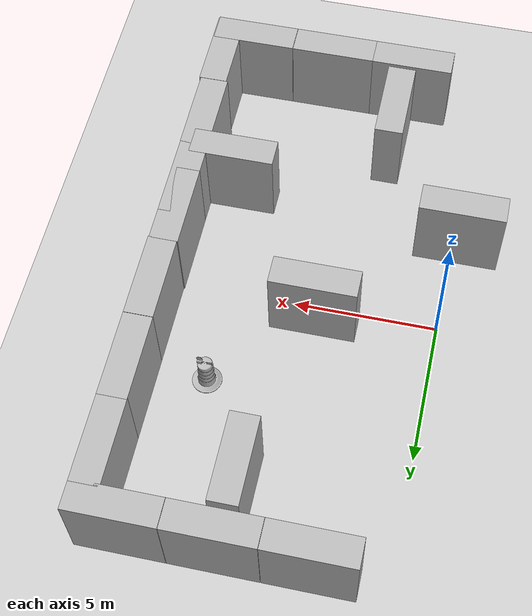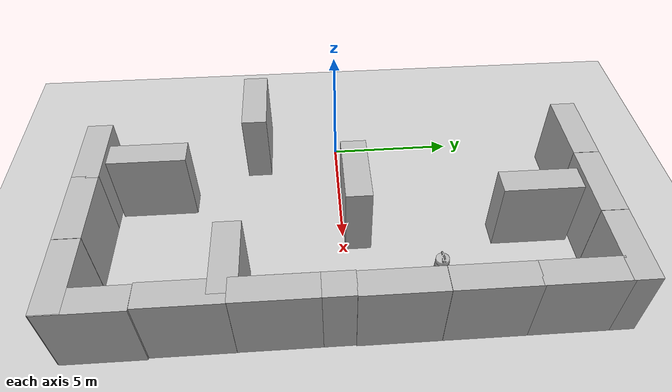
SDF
<sdf version="1.7">
 <world name="default">
  <model name="ground_plane">
   <static>1</static>
   <link name="link">
    <collision name="collision">
     <geometry><plane><normal>0 0 1</normal><size>100 100</size></plane></geometry>
     <surface>
      <contact><collide_bitmask>65535</collide_bitmask></contact>
      <friction><ode><mu>100</mu><mu2>50</mu2></ode></friction>
     </surface>
    </collision>
    <visual name="visual">
     <cast_shadows>0</cast_shadows>
     <geometry><plane><normal>0 0 1</normal><size>100 100</size></plane></geometry>
     <material>
      <script><uri>file://media/materials/scripts/gazebo.material</uri><name>Gazebo/Grey</name></script>
     </material>
    </visual>
   </link>
  </model>
  <model name="brick_box_3x1x3">
   <static>1</static>
   <link name="chassis">
    <pose>0 0 1.5 0 -0 0</pose>
    <collision name="collision"><geometry><box><size>3 1 3</size></box></geometry></collision>
    <visual name="visual">
     <geometry><mesh><uri>model://brick_box_3x1x3/meshes/simple_box.dae</uri><scale>3 1 3</scale></mesh></geometry>
     <material>
      <script>
       <uri>model://brick_box_3x1x3/materials/scripts</uri>
       <uri>model://brick_box_3x1x3/materials/textures</uri>
       <name>BrickBox/Diffuse</name>
      </script>
     </material>
    </visual>
   </link>
   <pose>8.4883 9.49696 0 0 -0 0</pose>
  </model>
  <model name="brick_box_3x1x3_0">
   <static>1</static>
   <link name="chassis">
    <pose>0 0 1.5 0 -0 0</pose>
    <collision name="collision"><geometry><box><size>3 1 3</size></box></geometry></collision>
    <visual name="visual">
     <geometry><mesh><uri>model://brick_box_3x1x3/meshes/simple_box.dae</uri><scale>3 1 3</scale></mesh></geometry>
     <material>
      <script>
       <uri>model://brick_box_3x1x3/materials/scripts</uri>
       <uri>model://brick_box_3x1x3/materials/textures</uri>
       <name>BrickBox/Diffuse</name>
      </script>
     </material>
    </visual>
   </link>
   <pose>5.47783 9.49696 0 0 -0 0</pose>
  </model>
  <model name="brick_box_3x1x3_1">
   <static>1</static>
   <link name="chassis">
    <pose>0 0 1.5 0 -0 0</pose>
    <collision name="collision"><geometry><box><size>3 1 3</size></box></geometry></collision>
    <visual name="visual">
     <geometry><mesh><uri>model://brick_box_3x1x3/meshes/simple_box.dae</uri><scale>3 1 3</scale></mesh></geometry>
     <material>
      <script>
       <uri>model://brick_box_3x1x3/materials/scripts</uri>
       <uri>model://brick_box_3x1x3/materials/textures</uri>
       <name>BrickBox/Diffuse</name>
      </script>
     </material>
    </visual>
   </link>
   <pose>2.46735 9.49696 0 0 -0 0</pose>
  </model>
  <model name="brick_box_3x1x3_6">
   <static>1</static>
   <link name="chassis">
    <pose>0 0 1.5 0 -0 0</pose>
    <collision name="collision"><geometry><box><size>3 1 3</size></box></geometry></collision>
    <visual name="visual">
     <geometry><mesh><uri>model://brick_box_3x1x3/meshes/simple_box.dae</uri><scale>3 1 3</scale></mesh></geometry>
     <material>
      <script>
       <uri>model://brick_box_3x1x3/materials/scripts</uri>
       <uri>model://brick_box_3x1x3/materials/textures</uri>
       <name>BrickBox/Diffuse</name>
      </script>
     </material>
    </visual>
   </link>
   <pose>8.48829 -9.528 0 0 -0 0</pose>
  </model>
  <model name="brick_box_3x1x3_7">
   <static>1</static>
   <link name="chassis">
    <pose>0 0 1.5 0 -0 0</pose>
    <collision name="collision"><geometry><box><size>3 1 3</size></box></geometry></collision>
    <visual name="visual">
     <geometry><mesh><uri>model://brick_box_3x1x3/meshes/simple_box.dae</uri><scale>3 1 3</scale></mesh></geometry>
     <material>
      <script>
       <uri>model://brick_box_3x1x3/materials/scripts</uri>
       <uri>model://brick_box_3x1x3/materials/textures</uri>
       <name>BrickBox/Diffuse</name>
      </script>
     </material>
    </visual>
   </link>
   <pose>5.47782 -9.528 0 0 -0 0</pose>
  </model>
  <model name="brick_box_3x1x3_8">
   <static>1</static>
   <link name="chassis">
    <pose>0 0 1.5 0 -0 0</pose>
    <collision name="collision"><geometry><box><size>3 1 3</size></box></geometry></collision>
    <visual name="visual">
     <geometry><mesh><uri>model://brick_box_3x1x3/meshes/simple_box.dae</uri><scale>3 1 3</scale></mesh></geometry>
     <material>
      <script>
       <uri>model://brick_box_3x1x3/materials/scripts</uri>
       <uri>model://brick_box_3x1x3/materials/textures</uri>
       <name>BrickBox/Diffuse</name>
      </script>
     </material>
    </visual>
   </link>
   <pose>2.56045 -9.528 0 0 -0 0</pose>
  </model>
  <model name="brick_box_3x1x3_5_clone_clone_clone_clone_3">
   <static>1</static>
   <link name="chassis">
    <pose>0 0 1.5 0 -0 0</pose>
    <collision name="collision"><geometry><box><size>3 1 3</size></box></geometry></collision>
    <visual name="visual">
     <geometry><mesh><uri>model://brick_box_3x1x3/meshes/simple_box.dae</uri><scale>3 1 3</scale></mesh></geometry>
     <material>
      <script>
       <uri>model://brick_box_3x1x3/materials/scripts</uri>
       <uri>model://brick_box_3x1x3/materials/textures</uri>
       <name>BrickBox/Diffuse</name>
      </script>
     </material>
    </visual>
   </link>
   <pose>9.48876 7.5846 0 0 -0 1.57</pose>
  </model>
  <model name="brick_box_3x1x3_5_clone_clone_clone_clone_4">
   <static>1</static>
   <link name="chassis">
    <pose>0 0 1.5 0 -0 0</pose>
    <collision name="collision"><geometry><box><size>3 1 3</size></box></geometry></collision>
    <visual name="visual">
     <geometry><mesh><uri>model://brick_box_3x1x3/meshes/simple_box.dae</uri><scale>3 1 3</scale></mesh></geometry>
     <material>
      <script>
       <uri>model://brick_box_3x1x3/materials/scripts</uri>
       <uri>model://brick_box_3x1x3/materials/textures</uri>
       <name>BrickBox/Diffuse</name>
      </script>
     </material>
    </visual>
   </link>
   <pose>9.48876 4.64037 0 0 -0 1.57</pose>
  </model>
  <model name="brick_box_3x1x3_5_clone_clone_clone_clone_5">
   <static>1</static>
   <link name="chassis">
    <pose>0 0 1.5 0 -0 0</pose>
    <collision name="collision"><geometry><box><size>3 1 3</size></box></geometry></collision>
    <visual name="visual">
     <geometry><mesh><uri>model://brick_box_3x1x3/meshes/simple_box.dae</uri><scale>3 1 3</scale></mesh></geometry>
     <material>
      <script>
       <uri>model://brick_box_3x1x3/materials/scripts</uri>
       <uri>model://brick_box_3x1x3/materials/textures</uri>
       <name>BrickBox/Diffuse</name>
      </script>
     </material>
    </visual>
   </link>
   <pose>9.48876 1.63213 0 0 -0 1.57</pose>
  </model>
  <model name="brick_box_3x1x3_5_clone_clone_clone_clone_6">
   <static>1</static>
   <link name="chassis">
    <pose>0 0 1.5 0 -0 0</pose>
    <collision name="collision"><geometry><box><size>3 1 3</size></box></geometry></collision>
    <visual name="visual">
     <geometry><mesh><uri>model://brick_box_3x1x3/meshes/simple_box.dae</uri><scale>3 1 3</scale></mesh></geometry>
     <material>
      <script>
       <uri>model://brick_box_3x1x3/materials/scripts</uri>
       <uri>model://brick_box_3x1x3/materials/textures</uri>
       <name>BrickBox/Diffuse</name>
      </script>
     </material>
    </visual>
   </link>
   <pose>9.45675 -1.34411 0 0 -0 1.57</pose>
  </model>
  <model name="brick_box_3x1x3_5_clone_clone_clone_clone_8">
   <static>1</static>
   <link name="chassis">
    <pose>0 0 1.5 0 -0 0</pose>
    <collision name="collision"><geometry><box><size>3 1 3</size></box></geometry></collision>
    <visual name="visual">
     <geometry><mesh><uri>model://brick_box_3x1x3/meshes/simple_box.dae</uri><scale>3 1 3</scale></mesh></geometry>
     <material>
      <script>
       <uri>model://brick_box_3x1x3/materials/scripts</uri>
       <uri>model://brick_box_3x1x3/materials/textures</uri>
       <name>BrickBox/Diffuse</name>
      </script>
     </material>
    </visual>
   </link>
   <pose>9.52076 -8.48068 0 0 -0 1.57</pose>
  </model>
  <model name="brick_box_3x1x3_5_clone_clone_clone_clone_7">
   <static>1</static>
   <link name="chassis">
    <pose>0 0 1.5 0 -0 0</pose>
    <collision name="collision"><geometry><box><size>3 1 3</size></box></geometry></collision>
    <visual name="visual">
     <geometry><mesh><uri>model://brick_box_3x1x3/meshes/simple_box.dae</uri><scale>3 1 3</scale></mesh></geometry>
     <material>
      <script>
       <uri>model://brick_box_3x1x3/materials/scripts</uri>
       <uri>model://brick_box_3x1x3/materials/textures</uri>
       <name>BrickBox/Diffuse</name>
      </script>
     </material>
    </visual>
   </link>
   <pose>9.45675 -2.4962 0 0 -0 1.57</pose>
  </model>
  <model name="brick_box_3x1x3_5_clone_clone_clone_clone_10_clone">
   <static>1</static>
   <link name="chassis">
    <pose>0 0 1.5 0 -0 0</pose>
    <collision name="collision"><geometry><box><size>3 1 3</size></box></geometry></collision>
    <visual name="visual">
     <geometry><mesh><uri>model://brick_box_3x1x3/meshes/simple_box.dae</uri><scale>3 1 3</scale></mesh></geometry>
     <material>
      <script>
       <uri>model://brick_box_3x1x3/materials/scripts</uri>
       <uri>model://brick_box_3x1x3/materials/textures</uri>
       <name>BrickBox/Diffuse</name>
      </script>
     </material>
    </visual>
   </link>
   <pose>9.46409 -5.47609 0 0 -0 1.57</pose>
  </model>
  <model name="brick_box_3x1x3_clone_0_clone">
   <static>1</static>
   <link name="chassis">
    <pose>0 0 1.5 0 -0 0</pose>
    <collision name="collision"><geometry><box><size>3 1 3</size></box></geometry></collision>
    <visual name="visual">
     <geometry><mesh><uri>model://brick_box_3x1x3/meshes/simple_box.dae</uri><scale>3 1 3</scale></mesh></geometry>
     <material>
      <script>
       <uri>model://brick_box_3x1x3/materials/scripts</uri>
       <uri>model://brick_box_3x1x3/materials/textures</uri>
       <name>BrickBox/Diffuse</name>
      </script>
     </material>
    </visual>
   </link>
   <pose>4.19243 0.55899 0 0 -0 0</pose>
  </model>
  <model name="brick_box_3x1x3_5_clone_clone_clone_clone_15_clone_0">
   <static>1</static>
   <link name="chassis">
    <pose>0 0 1.5 0 -0 0</pose>
    <collision name="collision"><geometry><box><size>3 1 3</size></box></geometry></collision>
    <visual name="visual">
     <geometry><mesh><uri>model://brick_box_3x1x3/meshes/simple_box.dae</uri><scale>3 1 3</scale></mesh></geometry>
     <material>
      <script>
       <uri>model://brick_box_3x1x3/materials/scripts</uri>
       <uri>model://brick_box_3x1x3/materials/textures</uri>
       <name>BrickBox/Diffuse</name>
      </script>
     </material>
    </visual>
   </link>
   <pose>5.31042 7.34142 0 0 -0 1.57</pose>
  </model>
  <model name="brick_box_3x1x3_clone_0_clone_clone_0">
   <static>1</static>
   <link name="chassis">
    <pose>0 0 1.5 0 -0 0</pose>
    <collision name="collision"><geometry><box><size>3 1 3</size></box></geometry></collision>
    <visual name="visual">
     <geometry><mesh><uri>model://brick_box_3x1x3/meshes/simple_box.dae</uri><scale>3 1 3</scale></mesh></geometry>
     <material>
      <script>
       <uri>model://brick_box_3x1x3/materials/scripts</uri>
       <uri>model://brick_box_3x1x3/materials/textures</uri>
       <name>BrickBox/Diffuse</name>
      </script>
     </material>
    </visual>
   </link>
   <pose>8.0681 -4.13654 0 0 -0 0</pose>
  </model>
  <model name="brick_box_3x1x3_5_clone_clone_clone_clone_15_clone_clone_clone_clone">
   <static>1</static>
   <link name="chassis">
    <pose>0 0 1.5 0 -0 0</pose>
    <collision name="collision"><geometry><box><size>3 1 3</size></box></geometry></collision>
    <visual name="visual">
     <geometry><mesh><uri>model://brick_box_3x1x3/meshes/simple_box.dae</uri><scale>3 1 3</scale></mesh></geometry>
     <material>
      <script>
       <uri>model://brick_box_3x1x3/materials/scripts</uri>
       <uri>model://brick_box_3x1x3/materials/textures</uri>
       <name>BrickBox/Diffuse</name>
      </script>
     </material>
    </visual>
   </link>
   <pose>2.84673 -7.4072 0 0 -0 1.57</pose>
  </model>
  <model name="brick_box_3x1x3_clone_0_clone_clone_1">
   <static>1</static>
   <link name="chassis">
    <pose>0 0 1.5 0 -0 0</pose>
    <collision name="collision"><geometry><box><size>3 1 3</size></box></geometry></collision>
    <visual name="visual">
     <geometry><mesh><uri>model://brick_box_3x1x3/meshes/simple_box.dae</uri><scale>3 1 3</scale></mesh></geometry>
     <material>
      <script>
       <uri>model://brick_box_3x1x3/materials/scripts</uri>
       <uri>model://brick_box_3x1x3/materials/textures</uri>
       <name>BrickBox/Diffuse</name>
      </script>
     </material>
    </visual>
   </link>
   <pose>-0.214773 -3.36602 0 0 -0 0</pose>
  </model>
  <model name="Construction Barrel_1">
   <link name="link">
    <inertial>
     <pose>0 0 0.4 0 -0 0</pose>
     <mass>500</mass>
     <inertia><ixx>51.2096</ixx><iyy>51.2096</iyy><izz>25</izz><ixy>0</ixy><ixz>0</ixz><iyz>0</iyz></inertia>
    </inertial>
    <collision name="collision">
     <geometry><mesh><uri>model://construction_barrel/meshes/construction_barrel.dae</uri></mesh></geometry>
    </collision>
    <visual name="visual">
     <geometry><mesh><uri>model://construction_barrel/meshes/construction_barrel.dae</uri></mesh></geometry>
    </visual>
   </link>
   <pose>7.29389 3.5107 -1e-06 3e-06 -2e-06 -2e-06</pose>
  </model>
 </world>
</sdf>
